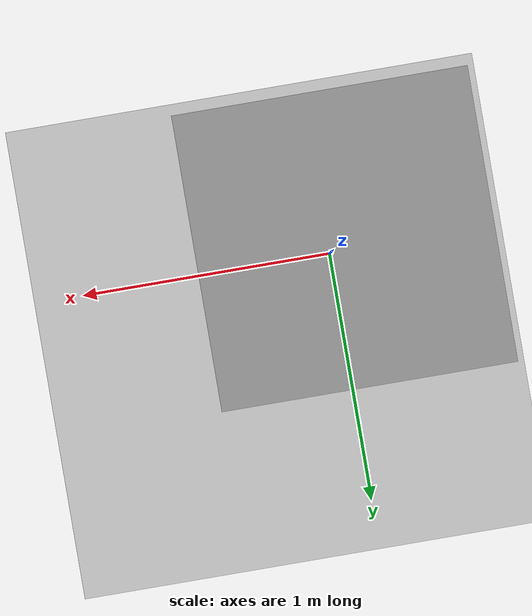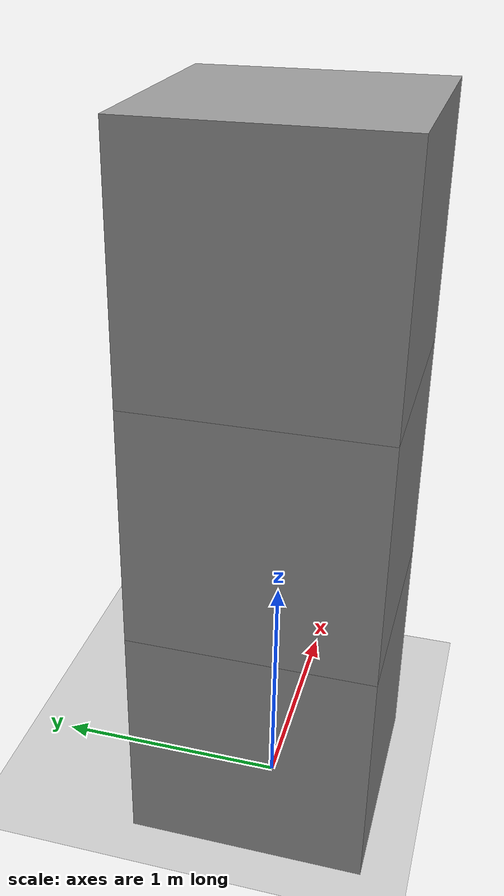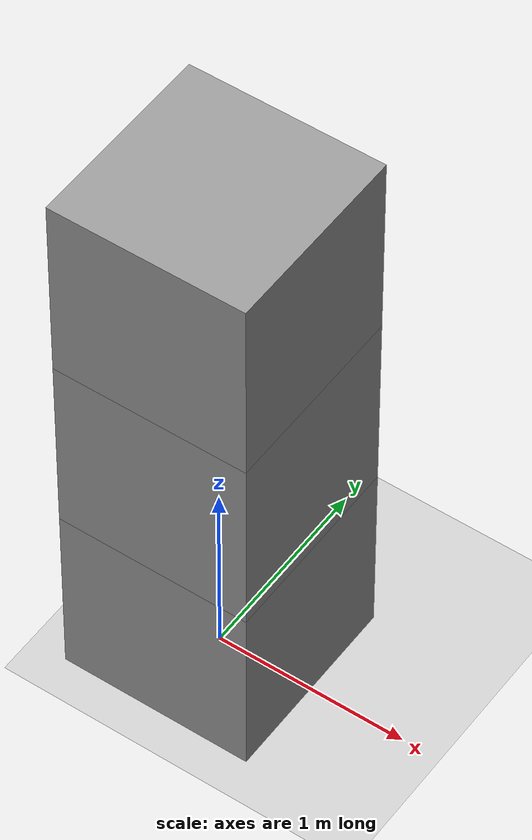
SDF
<sdf version="1.5">
 <world name="default">
  <light name="sun" type="directional">
   <pose>0 0 10 0 -0 0</pose>
   <diffuse>0.8 0.8 0.8 1</diffuse>
   <specular>0.2 0.2 0.2 1</specular>
   <attenuation>
    <range>1000</range>
    <constant>0.9</constant>
    <linear>0.01</linear>
    <quadratic>0.001</quadratic>
   </attenuation>
   <direction>-0.5 0.1 -0.9</direction>
  </light>
  <model name="ground_plane">
   <static>1</static>
   <link name="link">
    <collision name="collision">
     <geometry><plane><normal>0 0 1</normal><size>100 100</size></plane></geometry>
     <surface><friction><ode><mu>100</mu><mu2>50</mu2></ode></friction></surface>
    </collision>
    <visual name="visual">
     <cast_shadows>0</cast_shadows>
     <geometry><plane><normal>0 0 1</normal><size>100 100</size></plane></geometry>
     <material>
      <script><uri>file://media/materials/scripts/gazebo.material</uri><name>Gazebo/Grey</name></script>
     </material>
    </visual>
   </link>
  </model>
  <physics name="default_physics" default="0" type="ode">
   <max_step_size>0.001</max_step_size>
   <real_time_factor>1</real_time_factor>
   <real_time_update_rate>1000</real_time_update_rate>
   <gravity>0 0 -9.8</gravity>
   <magnetic_field>6e-06 2.3e-05 -4.2e-05</magnetic_field>
   <roki>
    <contact_info>
     <compensation>1000</compensation>
     <relaxation>1.0</relaxation>
     <static_friction>0.5</static_friction>
     <friction>0.3</friction>
    </contact_info>
    <solver_type>Volume</solver_type>
    <debug_print>true</debug_print>
   </roki>
  </physics>
  <scene><ambient>0.4 0.4 0.4 1</ambient><background>0.7 0.7 0.7 1</background><shadows>1</shadows></scene>
  <audio><device>default</device></audio>
  <spherical_coordinates>
   <surface_model>EARTH_WGS84</surface_model>
   <latitude_deg>0</latitude_deg>
   <longitude_deg>0</longitude_deg>
   <elevation>0</elevation>
   <heading_deg>0</heading_deg>
  </spherical_coordinates>
  <model name="unit_box_1">
   <pose>0 0 0.5 0 -0 0</pose>
   <link name="link">
    <inertial>
     <mass>1</mass>
     <inertia>
      <ixx>0.166667</ixx>
      <ixy>0</ixy>
      <ixz>0</ixz>
      <iyy>0.166667</iyy>
      <iyz>0</iyz>
      <izz>0.166667</izz>
     </inertia>
    </inertial>
    <collision name="collision"><geometry><box><size>1 1 1</size></box></geometry></collision>
    <visual name="visual">
     <geometry><box><size>1 1 1</size></box></geometry>
     <material>
      <script><name>Gazebo/Grey</name><uri>file://media/materials/scripts/gazebo.material</uri></script>
     </material>
    </visual>
   </link>
  </model>
  <model name="unit_box_2">
   <pose>0 0 1.5 0 -0 0</pose>
   <link name="link">
    <inertial>
     <mass>1</mass>
     <inertia>
      <ixx>0.166667</ixx>
      <ixy>0</ixy>
      <ixz>0</ixz>
      <iyy>0.166667</iyy>
      <iyz>0</iyz>
      <izz>0.166667</izz>
     </inertia>
    </inertial>
    <collision name="collision"><geometry><box><size>1 1 1</size></box></geometry></collision>
    <visual name="visual">
     <geometry><box><size>1 1 1</size></box></geometry>
     <material>
      <script><name>Gazebo/Grey</name><uri>file://media/materials/scripts/gazebo.material</uri></script>
     </material>
    </visual>
   </link>
  </model>
  <model name="unit_box_3">
   <pose>0 0 2.5 0 -0 0</pose>
   <link name="link">
    <inertial>
     <mass>1</mass>
     <inertia>
      <ixx>0.166667</ixx>
      <ixy>0</ixy>
      <ixz>0</ixz>
      <iyy>0.166667</iyy>
      <iyz>0</iyz>
      <izz>0.166667</izz>
     </inertia>
    </inertial>
    <collision name="collision"><geometry><box><size>1 1 1</size></box></geometry></collision>
    <visual name="visual">
     <geometry><box><size>1 1 1</size></box></geometry>
     <material>
      <script><name>Gazebo/Grey</name><uri>file://media/materials/scripts/gazebo.material</uri></script>
     </material>
    </visual>
   </link>
  </model>
 </world>
</sdf>
